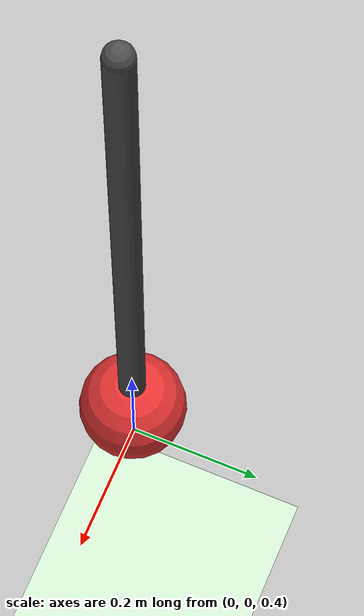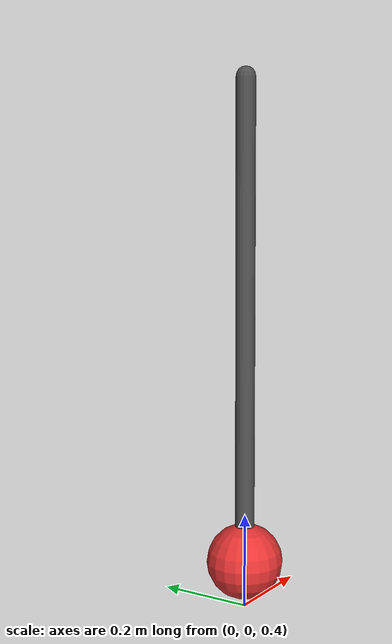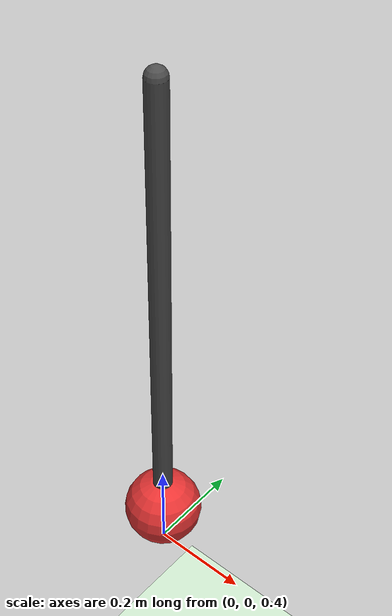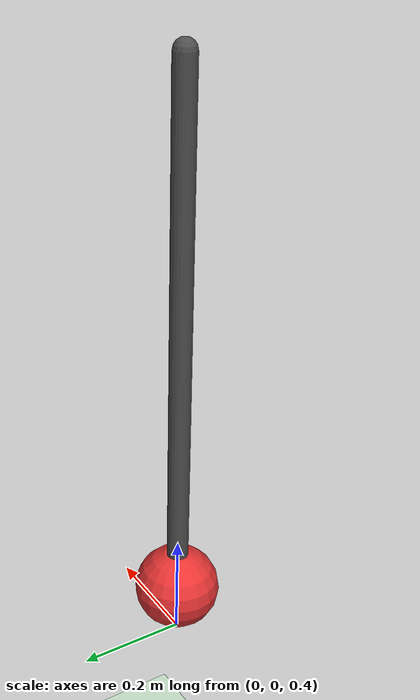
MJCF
<mujoco model="pendulum">
  <option gravity="0 0 -9.81" timestep="0.001"/>

  <!-- Câmara por defeito: o viewer abre já a olhar para o pêndulo -->
  <visual>
    <global azimuth="120" elevation="-20"/>
  </visual>
  <statistic center="0 0 1" extent="2.5"/>

  <worldbody>
    <light pos="0 0 3" dir="0 0 -1"/>
    <geom name="floor" type="plane" size="2 2 0.1" rgba="0.8 0.9 0.8 1"/>

    <!-- Ponto de suspensão a 1.5 m do chão -->
    <body name="pivot" pos="0 0 1.5">
      <!-- Junta de rotação (hinge) em torno do eixo Y = 1 dof -->
      <joint name="hinge" type="hinge" axis="0 1 0" damping="0.0"/>
      <!-- Haste leve (massa desprezável face à esfera) de 1 m a apontar para baixo -->
      <geom name="rod" type="capsule" fromto="0 0 0  0 0 -1.0" size="0.02" mass="0.01" rgba="0.3 0.3 0.3 1"/>
      <!-- Massa concentrada na ponta (L = 1.0 m) -->
      <geom name="bob" type="sphere" pos="0 0 -1.0" size="0.08" mass="1.0" rgba="0.9 0.2 0.2 1"/>
    </body>
  </worldbody>
</mujoco>
